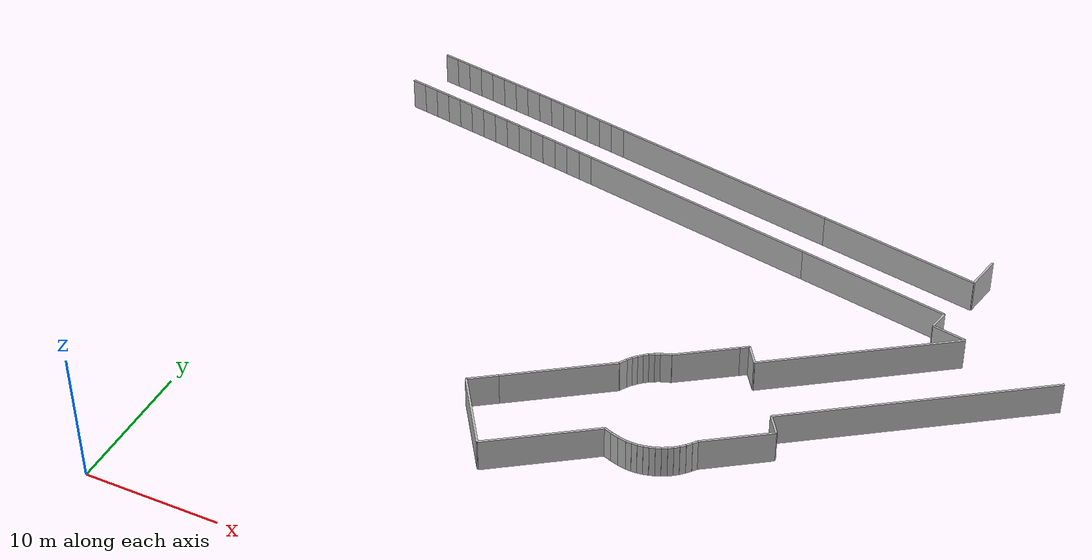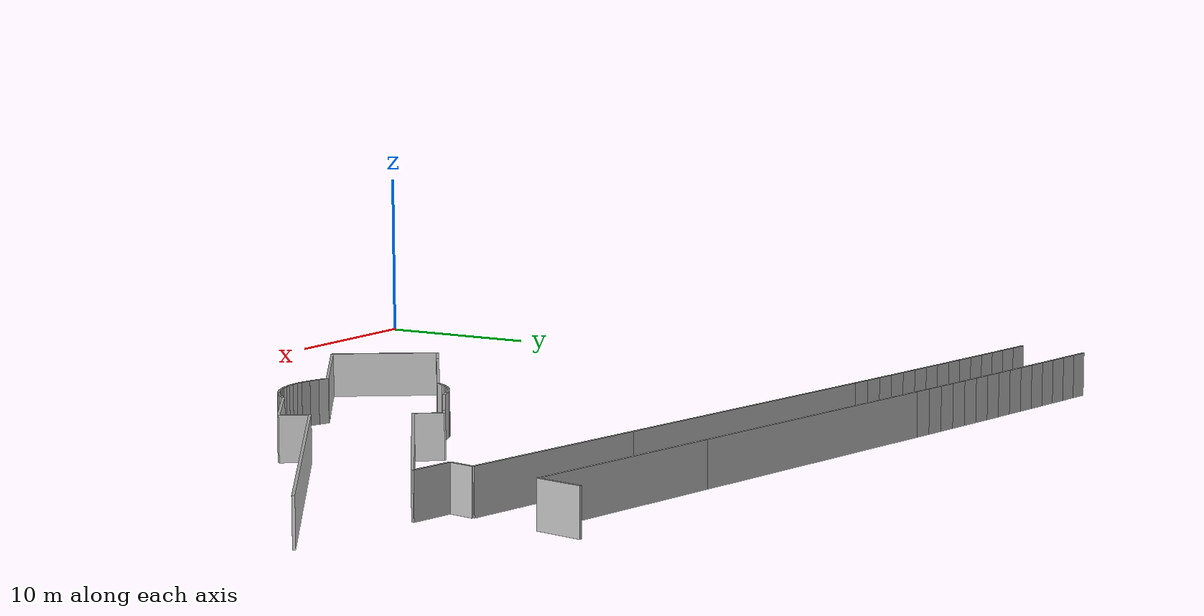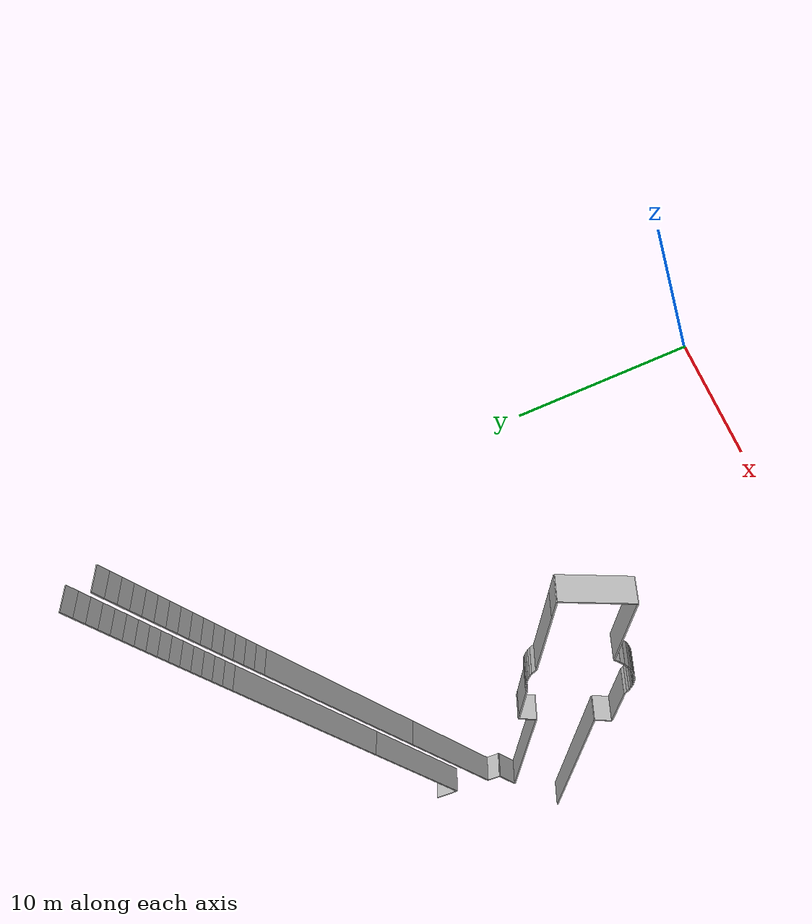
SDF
<?xml version="1.0" ?>
<sdf version="1.6">
  <model name="sps_2746">
    <pose frame="">0 0 0 0 -0 0</pose>
    <static>1</static>
    <self_collide>0</self_collide>
    <allow_auto_disable>0</allow_auto_disable>
    <link name="Wall66">
      <kinematic>0</kinematic>
      <gravity>1</gravity>
      <self_collide>0</self_collide>
      <collision name="collision">
        <geometry>
          <box>
            <size>2.18574 0.15 2.5</size>
          </box>
        </geometry>
        <pose frame="">0 0 0 0 -0 0</pose>
      </collision>
      <visual name="visual">
        <geometry>
          <box>
            <size>2.18574 0.15 2.5</size>
          </box>
        </geometry>
        <pose frame="">0 0 0 0 -0 0</pose>
        <cast_shadows>1</cast_shadows>
        <transparency>0.0</transparency>
      </visual>
      <pose frame="">20.1644 17.2707 1.25 0 -0 0.605917</pose>
    </link>
    <link name="Wall67">
      <kinematic>0</kinematic>
      <gravity>1</gravity>
      <self_collide>0</self_collide>
      <collision name="collision">
        <geometry>
          <box>
            <size>8.16413 0.15 2.5</size>
          </box>
        </geometry>
        <pose frame="">0 0 0 0 -0 0</pose>
      </collision>
      <visual name="visual">
        <geometry>
          <box>
            <size>8.16413 0.15 2.5</size>
          </box>
        </geometry>
        <pose frame="">0 0 0 0 -0 0</pose>
        <cast_shadows>1</cast_shadows>
        <transparency>0.0</transparency>
      </visual>
      <pose frame="">24.4181 20.2179 1.25 0 -0 0.605917</pose>
    </link>
    <link name="Wall68">
      <kinematic>0</kinematic>
      <gravity>1</gravity>
      <self_collide>0</self_collide>
      <collision name="collision">
        <geometry>
          <box>
            <size>2.66015 0.15 2.5</size>
          </box>
        </geometry>
        <pose frame="">0 0 0 0 -0 0</pose>
      </collision>
      <visual name="visual">
        <geometry>
          <box>
            <size>2.66015 0.15 2.5</size>
          </box>
        </geometry>
        <pose frame="">0 0 0 0 -0 0</pose>
        <cast_shadows>1</cast_shadows>
        <transparency>0.0</transparency>
      </visual>
      <pose frame="">46.7183 42.2026 1.25 0 -0 1.39135</pose>
    </link>
    <link name="Wall143">
      <kinematic>0</kinematic>
      <gravity>1</gravity>
      <self_collide>0</self_collide>
      <collision name="collision">
        <geometry>
          <box>
            <size>1.49983 0.15 2.5</size>
          </box>
        </geometry>
        <pose frame="">0 0 0 0 -0 0</pose>
      </collision>
      <visual name="visual">
        <geometry>
          <box>
            <size>1.49983 0.15 2.5</size>
          </box>
        </geometry>
        <pose frame="">0 0 0 0 -0 0</pose>
        <cast_shadows>1</cast_shadows>
        <transparency>0.0</transparency>
      </visual>
      <pose frame="">45.6082 36.0828 1.25 0 -0 1.39168</pose>
    </link>
    <link name="Wall144">
      <kinematic>0</kinematic>
      <gravity>1</gravity>
      <self_collide>0</self_collide>
      <collision name="collision">
        <geometry>
          <box>
            <size>11.4563 0.15 2.5</size>
          </box>
        </geometry>
        <pose frame="">0 0 0 0 -0 0</pose>
      </collision>
      <visual name="visual">
        <geometry>
          <box>
            <size>11.4563 0.15 2.5</size>
          </box>
        </geometry>
        <pose frame="">0 0 0 0 -0 0</pose>
        <cast_shadows>1</cast_shadows>
        <transparency>0.0</transparency>
      </visual>
      <pose frame="">40.1056 37.8428 1.25 0 -0 2.9622</pose>
    </link>
    <link name="Wall145">
      <kinematic>0</kinematic>
      <gravity>1</gravity>
      <self_collide>0</self_collide>
      <collision name="collision">
        <geometry>
          <box>
            <size>18.5098 0.15 2.5</size>
          </box>
        </geometry>
        <pose frame="">0 0 0 0 -0 0</pose>
      </collision>
      <visual name="visual">
        <geometry>
          <box>
            <size>18.5098 0.15 2.5</size>
          </box>
        </geometry>
        <pose frame="">0 0 0 0 -0 0</pose>
        <cast_shadows>1</cast_shadows>
        <transparency>0.0</transparency>
      </visual>
      <pose frame="">25.3631 40.5163 1.25 0 -0 2.9622</pose>
    </link>
    <link name="Wall252">
      <kinematic>0</kinematic>
      <gravity>1</gravity>
      <self_collide>0</self_collide>
      <collision name="collision">
        <geometry>
          <box>
            <size>6.10074 0.15 2.5</size>
          </box>
        </geometry>
        <pose frame="">0 0 0 0 -0 0</pose>
      </collision>
      <visual name="visual">
        <geometry>
          <box>
            <size>6.10074 0.15 2.5</size>
          </box>
        </geometry>
        <pose frame="">0 0 0 0 -0 0</pose>
        <cast_shadows>1</cast_shadows>
        <transparency>0.0</transparency>
      </visual>
      <pose frame="">21.0034 14.141 1.25 0 -0 2.17674</pose>
    </link>
    <link name="Wall253">
      <kinematic>0</kinematic>
      <gravity>1</gravity>
      <self_collide>0</self_collide>
      <collision name="collision">
        <geometry>
          <box>
            <size>14.6083 0.15 2.5</size>
          </box>
        </geometry>
        <pose frame="">0 0 0 0 -0 0</pose>
      </collision>
      <visual name="visual">
        <geometry>
          <box>
            <size>14.6083 0.15 2.5</size>
          </box>
        </geometry>
        <pose frame="">0 0 0 0 -0 0</pose>
        <cast_shadows>1</cast_shadows>
        <transparency>0.0</transparency>
      </visual>
      <pose frame="">41.9368 30.7295 1.25 0 -0 0.607546</pose>
    </link>
    <link name="Wall254">
      <kinematic>0</kinematic>
      <gravity>1</gravity>
      <self_collide>0</self_collide>
      <collision name="collision">
        <geometry>
          <box>
            <size>19.912 0.15 2.5</size>
          </box>
        </geometry>
        <pose frame="">0 0 0 0 -0 0</pose>
      </collision>
      <visual name="visual">
        <geometry>
          <box>
            <size>19.912 0.15 2.5</size>
          </box>
        </geometry>
        <pose frame="">0 0 0 0 -0 0</pose>
        <cast_shadows>1</cast_shadows>
        <transparency>0.0</transparency>
      </visual>
      <pose frame="">47.1357 27.8817 1.25 0 0 -2.53463</pose>
    </link>
    <link name="Wall316">
      <kinematic>0</kinematic>
      <gravity>1</gravity>
      <self_collide>0</self_collide>
      <collision name="collision">
        <geometry>
          <box>
            <size>5.1925 0.15 2.5</size>
          </box>
        </geometry>
        <pose frame="">0 0 0 0 -0 0</pose>
      </collision>
      <visual name="visual">
        <geometry>
          <box>
            <size>5.1925 0.15 2.5</size>
          </box>
        </geometry>
        <pose frame="">0 0 0 0 -0 0</pose>
        <cast_shadows>1</cast_shadows>
        <transparency>0.0</transparency>
      </visual>
      <pose frame="">37.7356 19.4094 1.25 0 0 -2.53563</pose>
    </link>
    <link name="Wall317">
      <kinematic>0</kinematic>
      <gravity>1</gravity>
      <self_collide>0</self_collide>
      <collision name="collision">
        <geometry>
          <box>
            <size>2.4993 0.15 2.5</size>
          </box>
        </geometry>
        <pose frame="">0 0 0 0 -0 0</pose>
      </collision>
      <visual name="visual">
        <geometry>
          <box>
            <size>2.4993 0.15 2.5</size>
          </box>
        </geometry>
        <pose frame="">0 0 0 0 -0 0</pose>
        <cast_shadows>1</cast_shadows>
        <transparency>0.0</transparency>
      </visual>
      <pose frame="">46.7042 35.122 1.25 0 -0 2.96229</pose>
    </link>
    <link name="Wall381">
      <kinematic>0</kinematic>
      <gravity>1</gravity>
      <self_collide>0</self_collide>
      <collision name="collision">
        <geometry>
          <box>
            <size>8.38171 0.15 2.5</size>
          </box>
        </geometry>
        <pose frame="">0 0 0 0 -0 0</pose>
      </collision>
      <visual name="visual">
        <geometry>
          <box>
            <size>8.38171 0.15 2.5</size>
          </box>
        </geometry>
        <pose frame="">0 0 0 0 -0 0</pose>
        <cast_shadows>1</cast_shadows>
        <transparency>0.0</transparency>
      </visual>
      <pose frame="">26.1852 14.0209 1.25 0 0 -2.53555</pose>
    </link>
    <link name="Wall382">
      <kinematic>0</kinematic>
      <gravity>1</gravity>
      <self_collide>0</self_collide>
      <collision name="collision">
        <geometry>
          <box>
            <size>17.7611 0.15 2.5</size>
          </box>
        </geometry>
        <pose frame="">0 0 0 0 -0 0</pose>
      </collision>
      <visual name="visual">
        <geometry>
          <box>
            <size>17.7611 0.15 2.5</size>
          </box>
        </geometry>
        <pose frame="">0 0 0 0 -0 0</pose>
        <cast_shadows>1</cast_shadows>
        <transparency>0.0</transparency>
      </visual>
      <pose frame="">25.7314 44.6568 1.25 0 0 -0.179402</pose>
    </link>
    <link name="Wall383">
      <kinematic>0</kinematic>
      <gravity>1</gravity>
      <self_collide>0</self_collide>
      <collision name="collision">
        <geometry>
          <box>
            <size>12.2073 0.15 2.5</size>
          </box>
        </geometry>
        <pose frame="">0 0 0 0 -0 0</pose>
      </collision>
      <visual name="visual">
        <geometry>
          <box>
            <size>12.2073 0.15 2.5</size>
          </box>
        </geometry>
        <pose frame="">0 0 0 0 -0 0</pose>
        <cast_shadows>1</cast_shadows>
        <transparency>0.0</transparency>
      </visual>
      <pose frame="">40.4752 41.983 1.25 0 0 -0.179402</pose>
    </link>
    <link name="Wall475">
      <kinematic>0</kinematic>
      <gravity>1</gravity>
      <self_collide>0</self_collide>
      <collision name="collision">
        <geometry>
          <box>
            <size>1.6001 0.15 2.5</size>
          </box>
        </geometry>
        <pose frame="">0 0 0 0 -0 0</pose>
      </collision>
      <visual name="visual">
        <geometry>
          <box>
            <size>1.6001 0.15 2.5</size>
          </box>
        </geometry>
        <pose frame="">0 0 0 0 -0 0</pose>
        <cast_shadows>1</cast_shadows>
        <transparency>0.0</transparency>
      </visual>
      <pose frame="">35.484 27.2175 1.25 0 0 -0.964808</pose>
    </link>
    <link name="Wall476">
      <kinematic>0</kinematic>
      <gravity>1</gravity>
      <self_collide>0</self_collide>
      <collision name="collision">
        <geometry>
          <box>
            <size>1.60009 0.15 2.5</size>
          </box>
        </geometry>
        <pose frame="">0 0 0 0 -0 0</pose>
      </collision>
      <visual name="visual">
        <geometry>
          <box>
            <size>1.60009 0.15 2.5</size>
          </box>
        </geometry>
        <pose frame="">0 0 0 0 -0 0</pose>
        <cast_shadows>1</cast_shadows>
        <transparency>0.0</transparency>
      </visual>
      <pose frame="">39.4138 21.5456 1.25 0 0 -0.964617</pose>
    </link>
    <link name="Wall567">
      <kinematic>0</kinematic>
      <gravity>1</gravity>
      <self_collide>0</self_collide>
      <collision name="collision">
        <geometry>
          <box>
            <size>0.610231 0.15 2.5</size>
          </box>
        </geometry>
        <pose frame="">0 0 0 0 -0 0</pose>
      </collision>
      <visual name="visual">
        <geometry>
          <box>
            <size>0.610231 0.15 2.5</size>
          </box>
        </geometry>
        <pose frame="">0 0 0 0 -0 0</pose>
        <cast_shadows>1</cast_shadows>
        <transparency>0.0</transparency>
      </visual>
      <pose frame="">27.9307 22.8042 1.25 0 0 -2.11204</pose>
    </link>
    <link name="Wall568">
      <kinematic>0</kinematic>
      <gravity>1</gravity>
      <self_collide>0</self_collide>
      <collision name="collision">
        <geometry>
          <box>
            <size>0.774105 0.15 2.5</size>
          </box>
        </geometry>
        <pose frame="">0 0 0 0 -0 0</pose>
      </collision>
      <visual name="visual">
        <geometry>
          <box>
            <size>0.774105 0.15 2.5</size>
          </box>
        </geometry>
        <pose frame="">0 0 0 0 -0 0</pose>
        <cast_shadows>1</cast_shadows>
        <transparency>0.0</transparency>
      </visual>
      <pose frame="">30.2564 24.7115 1.25 0 -0 0.349081</pose>
    </link>
    <link name="Wall569">
      <kinematic>0</kinematic>
      <gravity>1</gravity>
      <self_collide>0</self_collide>
      <collision name="collision">
        <geometry>
          <box>
            <size>4.67159 0.15 2.5</size>
          </box>
        </geometry>
        <pose frame="">0 0 0 0 -0 0</pose>
      </collision>
      <visual name="visual">
        <geometry>
          <box>
            <size>4.67159 0.15 2.5</size>
          </box>
        </geometry>
        <pose frame="">0 0 0 0 -0 0</pose>
        <cast_shadows>1</cast_shadows>
        <transparency>0.0</transparency>
      </visual>
      <pose frame="">32.5448 26.1673 1.25 0 -0 0.602372</pose>
    </link>
    <link name="Wall570">
      <kinematic>0</kinematic>
      <gravity>1</gravity>
      <self_collide>0</self_collide>
      <collision name="collision">
        <geometry>
          <box>
            <size>0.678206 0.15 2.5</size>
          </box>
        </geometry>
        <pose frame="">0 0 0 0 -0 0</pose>
      </collision>
      <visual name="visual">
        <geometry>
          <box>
            <size>0.678206 0.15 2.5</size>
          </box>
        </geometry>
        <pose frame="">0 0 0 0 -0 0</pose>
        <cast_shadows>1</cast_shadows>
        <transparency>0.0</transparency>
      </visual>
      <pose frame="">34.7489 27.6829 1.25 0 -0 0.602372</pose>
    </link>
    <link name="Wall3419">
      <kinematic>0</kinematic>
      <gravity>1</gravity>
      <self_collide>0</self_collide>
      <collision name="collision">
        <geometry>
          <box>
            <size>1.12144 0.15 2.5</size>
          </box>
        </geometry>
        <pose frame="">0 0 0 0 -0 0</pose>
      </collision>
      <visual name="visual">
        <geometry>
          <box>
            <size>1.12144 0.15 2.5</size>
          </box>
        </geometry>
        <pose frame="">0 0 0 0 -0 0</pose>
        <cast_shadows>1</cast_shadows>
        <transparency>0.0</transparency>
      </visual>
      <pose frame="">15.7049 42.2672 1.25 0 -0 2.96317</pose>
    </link>
    <link name="Wall3420">
      <kinematic>0</kinematic>
      <gravity>1</gravity>
      <self_collide>0</self_collide>
      <collision name="collision">
        <geometry>
          <box>
            <size>1.12127 0.15 2.5</size>
          </box>
        </geometry>
        <pose frame="">0 0 0 0 -0 0</pose>
      </collision>
      <visual name="visual">
        <geometry>
          <box>
            <size>1.12127 0.15 2.5</size>
          </box>
        </geometry>
        <pose frame="">0 0 0 0 -0 0</pose>
        <cast_shadows>1</cast_shadows>
        <transparency>0.0</transparency>
      </visual>
      <pose frame="">14.6012 42.4654 1.25 0 -0 2.96463</pose>
    </link>
    <link name="Wall3421">
      <kinematic>0</kinematic>
      <gravity>1</gravity>
      <self_collide>0</self_collide>
      <collision name="collision">
        <geometry>
          <box>
            <size>1.1213 0.15 2.5</size>
          </box>
        </geometry>
        <pose frame="">0 0 0 0 -0 0</pose>
      </collision>
      <visual name="visual">
        <geometry>
          <box>
            <size>1.1213 0.15 2.5</size>
          </box>
        </geometry>
        <pose frame="">0 0 0 0 -0 0</pose>
        <cast_shadows>1</cast_shadows>
        <transparency>0.0</transparency>
      </visual>
      <pose frame="">13.4973 42.6622 1.25 0 -0 2.96574</pose>
    </link>
    <link name="Wall3422">
      <kinematic>0</kinematic>
      <gravity>1</gravity>
      <self_collide>0</self_collide>
      <collision name="collision">
        <geometry>
          <box>
            <size>1.12152 0.15 2.5</size>
          </box>
        </geometry>
        <pose frame="">0 0 0 0 -0 0</pose>
      </collision>
      <visual name="visual">
        <geometry>
          <box>
            <size>1.12152 0.15 2.5</size>
          </box>
        </geometry>
        <pose frame="">0 0 0 0 -0 0</pose>
        <cast_shadows>1</cast_shadows>
        <transparency>0.0</transparency>
      </visual>
      <pose frame="">12.3931 42.8578 1.25 0 -0 2.96683</pose>
    </link>
    <link name="Wall3423">
      <kinematic>0</kinematic>
      <gravity>1</gravity>
      <self_collide>0</self_collide>
      <collision name="collision">
        <geometry>
          <box>
            <size>1.12145 0.15 2.5</size>
          </box>
        </geometry>
        <pose frame="">0 0 0 0 -0 0</pose>
      </collision>
      <visual name="visual">
        <geometry>
          <box>
            <size>1.12145 0.15 2.5</size>
          </box>
        </geometry>
        <pose frame="">0 0 0 0 -0 0</pose>
        <cast_shadows>1</cast_shadows>
        <transparency>0.0</transparency>
      </visual>
      <pose frame="">11.2885 43.0521 1.25 0 -0 2.96809</pose>
    </link>
    <link name="Wall3424">
      <kinematic>0</kinematic>
      <gravity>1</gravity>
      <self_collide>0</self_collide>
      <collision name="collision">
        <geometry>
          <box>
            <size>1.12157 0.15 2.5</size>
          </box>
        </geometry>
        <pose frame="">0 0 0 0 -0 0</pose>
      </collision>
      <visual name="visual">
        <geometry>
          <box>
            <size>1.12157 0.15 2.5</size>
          </box>
        </geometry>
        <pose frame="">0 0 0 0 -0 0</pose>
        <cast_shadows>1</cast_shadows>
        <transparency>0.0</transparency>
      </visual>
      <pose frame="">10.1837 43.245 1.25 0 -0 2.96938</pose>
    </link>
    <link name="Wall3425">
      <kinematic>0</kinematic>
      <gravity>1</gravity>
      <self_collide>0</self_collide>
      <collision name="collision">
        <geometry>
          <box>
            <size>1.12133 0.15 2.5</size>
          </box>
        </geometry>
        <pose frame="">0 0 0 0 -0 0</pose>
      </collision>
      <visual name="visual">
        <geometry>
          <box>
            <size>1.12133 0.15 2.5</size>
          </box>
        </geometry>
        <pose frame="">0 0 0 0 -0 0</pose>
        <cast_shadows>1</cast_shadows>
        <transparency>0.0</transparency>
      </visual>
      <pose frame="">9.07876 43.4365 1.25 0 -0 2.97061</pose>
    </link>
    <link name="Wall3426">
      <kinematic>0</kinematic>
      <gravity>1</gravity>
      <self_collide>0</self_collide>
      <collision name="collision">
        <geometry>
          <box>
            <size>1.12141 0.15 2.5</size>
          </box>
        </geometry>
        <pose frame="">0 0 0 0 -0 0</pose>
      </collision>
      <visual name="visual">
        <geometry>
          <box>
            <size>1.12141 0.15 2.5</size>
          </box>
        </geometry>
        <pose frame="">0 0 0 0 -0 0</pose>
        <cast_shadows>1</cast_shadows>
        <transparency>0.0</transparency>
      </visual>
      <pose frame="">7.97366 43.6268 1.25 0 -0 2.9715</pose>
    </link>
    <link name="Wall3427">
      <kinematic>0</kinematic>
      <gravity>1</gravity>
      <self_collide>0</self_collide>
      <collision name="collision">
        <geometry>
          <box>
            <size>1.12131 0.15 2.5</size>
          </box>
        </geometry>
        <pose frame="">0 0 0 0 -0 0</pose>
      </collision>
      <visual name="visual">
        <geometry>
          <box>
            <size>1.12131 0.15 2.5</size>
          </box>
        </geometry>
        <pose frame="">0 0 0 0 -0 0</pose>
        <cast_shadows>1</cast_shadows>
        <transparency>0.0</transparency>
      </visual>
      <pose frame="">6.86834 43.8158 1.25 0 -0 2.97298</pose>
    </link>
    <link name="Wall3428">
      <kinematic>0</kinematic>
      <gravity>1</gravity>
      <self_collide>0</self_collide>
      <collision name="collision">
        <geometry>
          <box>
            <size>1.1213 0.15 2.5</size>
          </box>
        </geometry>
        <pose frame="">0 0 0 0 -0 0</pose>
      </collision>
      <visual name="visual">
        <geometry>
          <box>
            <size>1.1213 0.15 2.5</size>
          </box>
        </geometry>
        <pose frame="">0 0 0 0 -0 0</pose>
        <cast_shadows>1</cast_shadows>
        <transparency>0.0</transparency>
      </visual>
      <pose frame="">5.76284 44.0034 1.25 0 -0 2.97403</pose>
    </link>
    <link name="Wall3429">
      <kinematic>0</kinematic>
      <gravity>1</gravity>
      <self_collide>0</self_collide>
      <collision name="collision">
        <geometry>
          <box>
            <size>1.12124 0.15 2.5</size>
          </box>
        </geometry>
        <pose frame="">0 0 0 0 -0 0</pose>
      </collision>
      <visual name="visual">
        <geometry>
          <box>
            <size>1.12124 0.15 2.5</size>
          </box>
        </geometry>
        <pose frame="">0 0 0 0 -0 0</pose>
        <cast_shadows>1</cast_shadows>
        <transparency>0.0</transparency>
      </visual>
      <pose frame="">4.65716 44.1897 1.25 0 -0 2.97529</pose>
    </link>
    <link name="Wall3430">
      <kinematic>0</kinematic>
      <gravity>1</gravity>
      <self_collide>0</self_collide>
      <collision name="collision">
        <geometry>
          <box>
            <size>1.12146 0.15 2.5</size>
          </box>
        </geometry>
        <pose frame="">0 0 0 0 -0 0</pose>
      </collision>
      <visual name="visual">
        <geometry>
          <box>
            <size>1.12146 0.15 2.5</size>
          </box>
        </geometry>
        <pose frame="">0 0 0 0 -0 0</pose>
        <cast_shadows>1</cast_shadows>
        <transparency>0.0</transparency>
      </visual>
      <pose frame="">3.55117 44.3747 1.25 0 -0 2.97643</pose>
    </link>
    <link name="Wall3431">
      <kinematic>0</kinematic>
      <gravity>1</gravity>
      <self_collide>0</self_collide>
      <collision name="collision">
        <geometry>
          <box>
            <size>1.12142 0.15 2.5</size>
          </box>
        </geometry>
        <pose frame="">0 0 0 0 -0 0</pose>
      </collision>
      <visual name="visual">
        <geometry>
          <box>
            <size>1.12142 0.15 2.5</size>
          </box>
        </geometry>
        <pose frame="">0 0 0 0 -0 0</pose>
        <cast_shadows>1</cast_shadows>
        <transparency>0.0</transparency>
      </visual>
      <pose frame="">2.44488 44.5584 1.25 0 -0 2.97763</pose>
    </link>
    <link name="Wall3432">
      <kinematic>0</kinematic>
      <gravity>1</gravity>
      <self_collide>0</self_collide>
      <collision name="collision">
        <geometry>
          <box>
            <size>1.12128 0.15 2.5</size>
          </box>
        </geometry>
        <pose frame="">0 0 0 0 -0 0</pose>
      </collision>
      <visual name="visual">
        <geometry>
          <box>
            <size>1.12128 0.15 2.5</size>
          </box>
        </geometry>
        <pose frame="">0 0 0 0 -0 0</pose>
        <cast_shadows>1</cast_shadows>
        <transparency>0.0</transparency>
      </visual>
      <pose frame="">1.33846 44.7408 1.25 0 -0 2.97877</pose>
    </link>
    <link name="Wall3433">
      <kinematic>0</kinematic>
      <gravity>1</gravity>
      <self_collide>0</self_collide>
      <collision name="collision">
        <geometry>
          <box>
            <size>1.12142 0.15 2.5</size>
          </box>
        </geometry>
        <pose frame="">0 0 0 0 -0 0</pose>
      </collision>
      <visual name="visual">
        <geometry>
          <box>
            <size>1.12142 0.15 2.5</size>
          </box>
        </geometry>
        <pose frame="">0 0 0 0 -0 0</pose>
        <cast_shadows>1</cast_shadows>
        <transparency>0.0</transparency>
      </visual>
      <pose frame="">0.231834 44.9219 1.25 0 -0 2.98001</pose>
    </link>
    <link name="Wall7269">
      <kinematic>0</kinematic>
      <gravity>1</gravity>
      <self_collide>0</self_collide>
      <collision name="collision">
        <geometry>
          <box>
            <size>1.12627 0.15 2.5</size>
          </box>
        </geometry>
        <pose frame="">0 0 0 0 -0 0</pose>
      </collision>
      <visual name="visual">
        <geometry>
          <box>
            <size>1.12627 0.15 2.5</size>
          </box>
        </geometry>
        <pose frame="">0 0 0 0 -0 0</pose>
        <cast_shadows>1</cast_shadows>
        <transparency>0.0</transparency>
      </visual>
      <pose frame="">16.4392 46.3414 1.25 0 -0 2.96322</pose>
    </link>
    <link name="Wall7270">
      <kinematic>0</kinematic>
      <gravity>1</gravity>
      <self_collide>0</self_collide>
      <collision name="collision">
        <geometry>
          <box>
            <size>1.12619 0.15 2.5</size>
          </box>
        </geometry>
        <pose frame="">0 0 0 0 -0 0</pose>
      </collision>
      <visual name="visual">
        <geometry>
          <box>
            <size>1.12619 0.15 2.5</size>
          </box>
        </geometry>
        <pose frame="">0 0 0 0 -0 0</pose>
        <cast_shadows>1</cast_shadows>
        <transparency>0.0</transparency>
      </visual>
      <pose frame="">15.3307 46.5405 1.25 0 -0 2.96453</pose>
    </link>
    <link name="Wall7271">
      <kinematic>0</kinematic>
      <gravity>1</gravity>
      <self_collide>0</self_collide>
      <collision name="collision">
        <geometry>
          <box>
            <size>1.12641 0.15 2.5</size>
          </box>
        </geometry>
        <pose frame="">0 0 0 0 -0 0</pose>
      </collision>
      <visual name="visual">
        <geometry>
          <box>
            <size>1.12641 0.15 2.5</size>
          </box>
        </geometry>
        <pose frame="">0 0 0 0 -0 0</pose>
        <cast_shadows>1</cast_shadows>
        <transparency>0.0</transparency>
      </visual>
      <pose frame="">14.2219 46.7383 1.25 0 -0 2.96561</pose>
    </link>
    <link name="Wall7272">
      <kinematic>0</kinematic>
      <gravity>1</gravity>
      <self_collide>0</self_collide>
      <collision name="collision">
        <geometry>
          <box>
            <size>1.12634 0.15 2.5</size>
          </box>
        </geometry>
        <pose frame="">0 0 0 0 -0 0</pose>
      </collision>
      <visual name="visual">
        <geometry>
          <box>
            <size>1.12634 0.15 2.5</size>
          </box>
        </geometry>
        <pose frame="">0 0 0 0 -0 0</pose>
        <cast_shadows>1</cast_shadows>
        <transparency>0.0</transparency>
      </visual>
      <pose frame="">13.1128 46.9348 1.25 0 -0 2.96687</pose>
    </link>
    <link name="Wall7273">
      <kinematic>0</kinematic>
      <gravity>1</gravity>
      <self_collide>0</self_collide>
      <collision name="collision">
        <geometry>
          <box>
            <size>1.12628 0.15 2.5</size>
          </box>
        </geometry>
        <pose frame="">0 0 0 0 -0 0</pose>
      </collision>
      <visual name="visual">
        <geometry>
          <box>
            <size>1.12628 0.15 2.5</size>
          </box>
        </geometry>
        <pose frame="">0 0 0 0 -0 0</pose>
        <cast_shadows>1</cast_shadows>
        <transparency>0.0</transparency>
      </visual>
      <pose frame="">12.0036 47.1299 1.25 0 -0 2.96812</pose>
    </link>
    <link name="Wall7274">
      <kinematic>0</kinematic>
      <gravity>1</gravity>
      <self_collide>0</self_collide>
      <collision name="collision">
        <geometry>
          <box>
            <size>1.1265 0.15 2.5</size>
          </box>
        </geometry>
        <pose frame="">0 0 0 0 -0 0</pose>
      </collision>
      <visual name="visual">
        <geometry>
          <box>
            <size>1.1265 0.15 2.5</size>
          </box>
        </geometry>
        <pose frame="">0 0 0 0 -0 0</pose>
        <cast_shadows>1</cast_shadows>
        <transparency>0.0</transparency>
      </visual>
      <pose frame="">10.894 47.3237 1.25 0 -0 2.9692</pose>
    </link>
    <link name="Wall7275">
      <kinematic>0</kinematic>
      <gravity>1</gravity>
      <self_collide>0</self_collide>
      <collision name="collision">
        <geometry>
          <box>
            <size>1.12625 0.15 2.5</size>
          </box>
        </geometry>
        <pose frame="">0 0 0 0 -0 0</pose>
      </collision>
      <visual name="visual">
        <geometry>
          <box>
            <size>1.12625 0.15 2.5</size>
          </box>
        </geometry>
        <pose frame="">0 0 0 0 -0 0</pose>
        <cast_shadows>1</cast_shadows>
        <transparency>0.0</transparency>
      </visual>
      <pose frame="">9.78417 47.5162 1.25 0 -0 2.97048</pose>
    </link>
    <link name="Wall7276">
      <kinematic>0</kinematic>
      <gravity>1</gravity>
      <self_collide>0</self_collide>
      <collision name="collision">
        <geometry>
          <box>
            <size>1.1262 0.15 2.5</size>
          </box>
        </geometry>
        <pose frame="">0 0 0 0 -0 0</pose>
      </collision>
      <visual name="visual">
        <geometry>
          <box>
            <size>1.1262 0.15 2.5</size>
          </box>
        </geometry>
        <pose frame="">0 0 0 0 -0 0</pose>
        <cast_shadows>1</cast_shadows>
        <transparency>0.0</transparency>
      </visual>
      <pose frame="">8.67428 47.7073 1.25 0 -0 2.97169</pose>
    </link>
    <link name="Wall7277">
      <kinematic>0</kinematic>
      <gravity>1</gravity>
      <self_collide>0</self_collide>
      <collision name="collision">
        <geometry>
          <box>
            <size>1.1262 0.15 2.5</size>
          </box>
        </geometry>
        <pose frame="">0 0 0 0 -0 0</pose>
      </collision>
      <visual name="visual">
        <geometry>
          <box>
            <size>1.1262 0.15 2.5</size>
          </box>
        </geometry>
        <pose frame="">0 0 0 0 -0 0</pose>
        <cast_shadows>1</cast_shadows>
        <transparency>0.0</transparency>
      </visual>
      <pose frame="">7.56417 47.897 1.25 0 -0 2.973</pose>
    </link>
    <link name="Wall7278">
      <kinematic>0</kinematic>
      <gravity>1</gravity>
      <self_collide>0</self_collide>
      <collision name="collision">
        <geometry>
          <box>
            <size>1.12636 0.15 2.5</size>
          </box>
        </geometry>
        <pose frame="">0 0 0 0 -0 0</pose>
      </collision>
      <visual name="visual">
        <geometry>
          <box>
            <size>1.12636 0.15 2.5</size>
          </box>
        </geometry>
        <pose frame="">0 0 0 0 -0 0</pose>
        <cast_shadows>1</cast_shadows>
        <transparency>0.0</transparency>
      </visual>
      <pose frame="">6.45376 48.0854 1.25 0 -0 2.97407</pose>
    </link>
    <link name="Wall7279">
      <kinematic>0</kinematic>
      <gravity>1</gravity>
      <self_collide>0</self_collide>
      <collision name="collision">
        <geometry>
          <box>
            <size>1.12635 0.15 2.5</size>
          </box>
        </geometry>
        <pose frame="">0 0 0 0 -0 0</pose>
      </collision>
      <visual name="visual">
        <geometry>
          <box>
            <size>1.12635 0.15 2.5</size>
          </box>
        </geometry>
        <pose frame="">0 0 0 0 -0 0</pose>
        <cast_shadows>1</cast_shadows>
        <transparency>0.0</transparency>
      </visual>
      <pose frame="">5.34307 48.2726 1.25 0 -0 2.97512</pose>
    </link>
    <link name="Wall7280">
      <kinematic>0</kinematic>
      <gravity>1</gravity>
      <self_collide>0</self_collide>
      <collision name="collision">
        <geometry>
          <box>
            <size>1.12635 0.15 2.5</size>
          </box>
        </geometry>
        <pose frame="">0 0 0 0 -0 0</pose>
      </collision>
      <visual name="visual">
        <geometry>
          <box>
            <size>1.12635 0.15 2.5</size>
          </box>
        </geometry>
        <pose frame="">0 0 0 0 -0 0</pose>
        <cast_shadows>1</cast_shadows>
        <transparency>0.0</transparency>
      </visual>
      <pose frame="">4.23217 48.4585 1.25 0 -0 2.97644</pose>
    </link>
    <link name="Wall7281">
      <kinematic>0</kinematic>
      <gravity>1</gravity>
      <self_collide>0</self_collide>
      <collision name="collision">
        <geometry>
          <box>
            <size>1.12634 0.15 2.5</size>
          </box>
        </geometry>
        <pose frame="">0 0 0 0 -0 0</pose>
      </collision>
      <visual name="visual">
        <geometry>
          <box>
            <size>1.12634 0.15 2.5</size>
          </box>
        </geometry>
        <pose frame="">0 0 0 0 -0 0</pose>
        <cast_shadows>1</cast_shadows>
        <transparency>0.0</transparency>
      </visual>
      <pose frame="">3.12105 48.6431 1.25 0 -0 2.97748</pose>
    </link>
    <link name="Wall7282">
      <kinematic>0</kinematic>
      <gravity>1</gravity>
      <self_collide>0</self_collide>
      <collision name="collision">
        <geometry>
          <box>
            <size>1.12625 0.15 2.5</size>
          </box>
        </geometry>
        <pose frame="">0 0 0 0 -0 0</pose>
      </collision>
      <visual name="visual">
        <geometry>
          <box>
            <size>1.12625 0.15 2.5</size>
          </box>
        </geometry>
        <pose frame="">0 0 0 0 -0 0</pose>
        <cast_shadows>1</cast_shadows>
        <transparency>0.0</transparency>
      </visual>
      <pose frame="">2.00976 48.8263 1.25 0 -0 2.97895</pose>
    </link>
    <link name="Wall7283">
      <kinematic>0</kinematic>
      <gravity>1</gravity>
      <self_collide>0</self_collide>
      <collision name="collision">
        <geometry>
          <box>
            <size>1.12631 0.15 2.5</size>
          </box>
        </geometry>
        <pose frame="">0 0 0 0 -0 0</pose>
      </collision>
      <visual name="visual">
        <geometry>
          <box>
            <size>1.12631 0.15 2.5</size>
          </box>
        </geometry>
        <pose frame="">0 0 0 0 -0 0</pose>
        <cast_shadows>1</cast_shadows>
        <transparency>0.0</transparency>
      </visual>
      <pose frame="">0.898246 49.0081 1.25 0 -0 2.98</pose>
    </link>
    <link name="Wall8194">
      <kinematic>0</kinematic>
      <gravity>1</gravity>
      <self_collide>0</self_collide>
      <collision name="collision">
        <geometry>
          <box>
            <size>0.39704 0.15 2.5</size>
          </box>
        </geometry>
        <pose frame="">0 0 0 0 -0 0</pose>
      </collision>
      <visual name="visual">
        <geometry>
          <box>
            <size>0.39704 0.15 2.5</size>
          </box>
        </geometry>
        <pose frame="">0 0 0 0 -0 0</pose>
        <cast_shadows>1</cast_shadows>
        <transparency>0.0</transparency>
      </visual>
      <pose frame="">29.7165 24.4875 1.25 0 0 -2.66193</pose>
    </link>
    <link name="Wall8195">
      <kinematic>0</kinematic>
      <gravity>1</gravity>
      <self_collide>0</self_collide>
      <collision name="collision">
        <geometry>
          <box>
            <size>0.396899 0.15 2.5</size>
          </box>
        </geometry>
        <pose frame="">0 0 0 0 -0 0</pose>
      </collision>
      <visual name="visual">
        <geometry>
          <box>
            <size>0.396899 0.15 2.5</size>
          </box>
        </geometry>
        <pose frame="">0 0 0 0 -0 0</pose>
        <cast_shadows>1</cast_shadows>
        <transparency>0.0</transparency>
      </visual>
      <pose frame="">29.373 24.2893 1.25 0 0 -2.57453</pose>
    </link>
    <link name="Wall8196">
      <kinematic>0</kinematic>
      <gravity>1</gravity>
      <self_collide>0</self_collide>
      <collision name="collision">
        <geometry>
          <box>
            <size>0.396971 0.15 2.5</size>
          </box>
        </geometry>
        <pose frame="">0 0 0 0 -0 0</pose>
      </collision>
      <visual name="visual">
        <geometry>
          <box>
            <size>0.396971 0.15 2.5</size>
          </box>
        </geometry>
        <pose frame="">0 0 0 0 -0 0</pose>
        <cast_shadows>1</cast_shadows>
        <transparency>0.0</transparency>
      </visual>
      <pose frame="">29.0481 24.0619 1.25 0 0 -2.48736</pose>
    </link>
    <link name="Wall8197">
      <kinematic>0</kinematic>
      <gravity>1</gravity>
      <self_collide>0</self_collide>
      <collision name="collision">
        <geometry>
          <box>
            <size>0.396926 0.15 2.5</size>
          </box>
        </geometry>
        <pose frame="">0 0 0 0 -0 0</pose>
      </collision>
      <visual name="visual">
        <geometry>
          <box>
            <size>0.396926 0.15 2.5</size>
          </box>
        </geometry>
        <pose frame="">0 0 0 0 -0 0</pose>
        <cast_shadows>1</cast_shadows>
        <transparency>0.0</transparency>
      </visual>
      <pose frame="">28.7443 23.8071 1.25 0 0 -2.40035</pose>
    </link>
    <link name="Wall8198">
      <kinematic>0</kinematic>
      <gravity>1</gravity>
      <self_collide>0</self_collide>
      <collision name="collision">
        <geometry>
          <box>
            <size>0.39708 0.15 2.5</size>
          </box>
        </geometry>
        <pose frame="">0 0 0 0 -0 0</pose>
      </collision>
      <visual name="visual">
        <geometry>
          <box>
            <size>0.39708 0.15 2.5</size>
          </box>
        </geometry>
        <pose frame="">0 0 0 0 -0 0</pose>
        <cast_shadows>1</cast_shadows>
        <transparency>0.0</transparency>
      </visual>
      <pose frame="">28.4636 23.5268 1.25 0 0 -2.31314</pose>
    </link>
    <link name="Wall8199">
      <kinematic>0</kinematic>
      <gravity>1</gravity>
      <self_collide>0</self_collide>
      <collision name="collision">
        <geometry>
          <box>
            <size>0.396826 0.15 2.5</size>
          </box>
        </geometry>
        <pose frame="">0 0 0 0 -0 0</pose>
      </collision>
      <visual name="visual">
        <geometry>
          <box>
            <size>0.396826 0.15 2.5</size>
          </box>
        </geometry>
        <pose frame="">0 0 0 0 -0 0</pose>
        <cast_shadows>1</cast_shadows>
        <transparency>0.0</transparency>
      </visual>
      <pose frame="">28.2086 23.2231 1.25 0 0 -2.22531</pose>
    </link>
    <link name="Wall9054">
      <kinematic>0</kinematic>
      <gravity>1</gravity>
      <self_collide>0</self_collide>
      <collision name="collision">
        <geometry>
          <box>
            <size>0.618748 0.15 2.5</size>
          </box>
        </geometry>
        <pose frame="">0 0 0 0 -0 0</pose>
      </collision>
      <visual name="visual">
        <geometry>
          <box>
            <size>0.618748 0.15 2.5</size>
          </box>
        </geometry>
        <pose frame="">0 0 0 0 -0 0</pose>
        <cast_shadows>1</cast_shadows>
        <transparency>0.0</transparency>
      </visual>
      <pose frame="">29.9199 16.3011 1.25 0 0 -0.353137</pose>
    </link>
    <link name="Wall9055">
      <kinematic>0</kinematic>
      <gravity>1</gravity>
      <self_collide>0</self_collide>
      <collision name="collision">
        <geometry>
          <box>
            <size>0.618919 0.15 2.5</size>
          </box>
        </geometry>
        <pose frame="">0 0 0 0 -0 0</pose>
      </collision>
      <visual name="visual">
        <geometry>
          <box>
            <size>0.618919 0.15 2.5</size>
          </box>
        </geometry>
        <pose frame="">0 0 0 0 -0 0</pose>
        <cast_shadows>1</cast_shadows>
        <transparency>0.0</transparency>
      </visual>
      <pose frame="">30.5088 16.1129 1.25 0 0 -0.265526</pose>
    </link>
    <link name="Wall9056">
      <kinematic>0</kinematic>
      <gravity>1</gravity>
      <self_collide>0</self_collide>
      <collision name="collision">
        <geometry>
          <box>
            <size>0.618796 0.15 2.5</size>
          </box>
        </geometry>
        <pose frame="">0 0 0 0 -0 0</pose>
      </collision>
      <visual name="visual">
        <geometry>
          <box>
            <size>0.618796 0.15 2.5</size>
          </box>
        </geometry>
        <pose frame="">0 0 0 0 -0 0</pose>
        <cast_shadows>1</cast_shadows>
        <transparency>0.0</transparency>
      </visual>
      <pose frame="">31.112 15.9769 1.25 0 0 -0.178089</pose>
    </link>
    <link name="Wall9057">
      <kinematic>0</kinematic>
      <gravity>1</gravity>
      <self_collide>0</self_collide>
      <collision name="collision">
        <geometry>
          <box>
            <size>0.396988 0.15 2.5</size>
          </box>
        </geometry>
        <pose frame="">0 0 0 0 -0 0</pose>
      </collision>
      <visual name="visual">
        <geometry>
          <box>
            <size>0.396988 0.15 2.5</size>
          </box>
        </geometry>
        <pose frame="">0 0 0 0 -0 0</pose>
        <cast_shadows>1</cast_shadows>
        <transparency>0.0</transparency>
      </visual>
      <pose frame="">31.6148 15.9134 1.25 0 0 -0.0438316</pose>
    </link>
    <link name="Wall9058">
      <kinematic>0</kinematic>
      <gravity>1</gravity>
      <self_collide>0</self_collide>
      <collision name="collision">
        <geometry>
          <box>
            <size>0.396736 0.15 2.5</size>
          </box>
        </geometry>
        <pose frame="">0 0 0 0 -0 0</pose>
      </collision>
      <visual name="visual">
        <geometry>
          <box>
            <size>0.396736 0.15 2.5</size>
          </box>
        </geometry>
        <pose frame="">0 0 0 0 -0 0</pose>
        <cast_shadows>1</cast_shadows>
        <transparency>0.0</transparency>
      </visual>
      <pose frame="">32.0113 15.9133 1.25 0 -0 0.0433974</pose>
    </link>
    <link name="Wall9059">
      <kinematic>0</kinematic>
      <gravity>1</gravity>
      <self_collide>0</self_collide>
      <collision name="collision">
        <geometry>
          <box>
            <size>0.397012 0.15 2.5</size>
          </box>
        </geometry>
        <pose frame="">0 0 0 0 -0 0</pose>
      </collision>
      <visual name="visual">
        <geometry>
          <box>
            <size>0.397012 0.15 2.5</size>
          </box>
        </geometry>
        <pose frame="">0 0 0 0 -0 0</pose>
        <cast_shadows>1</cast_shadows>
        <transparency>0.0</transparency>
      </visual>
      <pose frame="">32.4062 15.9478 1.25 0 -0 0.130896</pose>
    </link>
    <link name="Wall9060">
      <kinematic>0</kinematic>
      <gravity>1</gravity>
      <self_collide>0</self_collide>
      <collision name="collision">
        <geometry>
          <box>
            <size>0.397006 0.15 2.5</size>
          </box>
        </geometry>
        <pose frame="">0 0 0 0 -0 0</pose>
      </collision>
      <visual name="visual">
        <geometry>
          <box>
            <size>0.397006 0.15 2.5</size>
          </box>
        </geometry>
        <pose frame="">0 0 0 0 -0 0</pose>
        <cast_shadows>1</cast_shadows>
        <transparency>0.0</transparency>
      </visual>
      <pose frame="">32.7969 16.0166 1.25 0 -0 0.217718</pose>
    </link>
    <link name="Wall9061">
      <kinematic>0</kinematic>
      <gravity>1</gravity>
      <self_collide>0</self_collide>
      <collision name="collision">
        <geometry>
          <box>
            <size>0.396923 0.15 2.5</size>
          </box>
        </geometry>
        <pose frame="">0 0 0 0 -0 0</pose>
      </collision>
      <visual name="visual">
        <geometry>
          <box>
            <size>0.396923 0.15 2.5</size>
          </box>
        </geometry>
        <pose frame="">0 0 0 0 -0 0</pose>
        <cast_shadows>1</cast_shadows>
        <transparency>0.0</transparency>
      </visual>
      <pose frame="">33.18 16.1191 1.25 0 -0 0.305022</pose>
    </link>
    <link name="Wall9062">
      <kinematic>0</kinematic>
      <gravity>1</gravity>
      <self_collide>0</self_collide>
      <collision name="collision">
        <geometry>
          <box>
            <size>0.396955 0.15 2.5</size>
          </box>
        </geometry>
        <pose frame="">0 0 0 0 -0 0</pose>
      </collision>
      <visual name="visual">
        <geometry>
          <box>
            <size>0.396955 0.15 2.5</size>
          </box>
        </geometry>
        <pose frame="">0 0 0 0 -0 0</pose>
        <cast_shadows>1</cast_shadows>
        <transparency>0.0</transparency>
      </visual>
      <pose frame="">33.5527 16.2546 1.25 0 -0 0.392556</pose>
    </link>
    <link name="Wall9063">
      <kinematic>0</kinematic>
      <gravity>1</gravity>
      <self_collide>0</self_collide>
      <collision name="collision">
        <geometry>
          <box>
            <size>0.397012 0.15 2.5</size>
          </box>
        </geometry>
        <pose frame="">0 0 0 0 -0 0</pose>
      </collision>
      <visual name="visual">
        <geometry>
          <box>
            <size>0.397012 0.15 2.5</size>
          </box>
        </geometry>
        <pose frame="">0 0 0 0 -0 0</pose>
        <cast_shadows>1</cast_shadows>
        <transparency>0.0</transparency>
      </visual>
      <pose frame="">33.9122 16.4221 1.25 0 -0 0.47953</pose>
    </link>
    <link name="Wall9064">
      <kinematic>0</kinematic>
      <gravity>1</gravity>
      <self_collide>0</self_collide>
      <collision name="collision">
        <geometry>
          <box>
            <size>0.396899 0.15 2.5</size>
          </box>
        </geometry>
        <pose frame="">0 0 0 0 -0 0</pose>
      </collision>
      <visual name="visual">
        <geometry>
          <box>
            <size>0.396899 0.15 2.5</size>
          </box>
        </geometry>
        <pose frame="">0 0 0 0 -0 0</pose>
        <cast_shadows>1</cast_shadows>
        <transparency>0.0</transparency>
      </visual>
      <pose frame="">34.2557 16.6203 1.25 0 -0 0.567059</pose>
    </link>
    <link name="Wall9065">
      <kinematic>0</kinematic>
      <gravity>1</gravity>
      <self_collide>0</self_collide>
      <collision name="collision">
        <geometry>
          <box>
            <size>0.39686 0.15 2.5</size>
          </box>
        </geometry>
        <pose frame="">0 0 0 0 -0 0</pose>
      </collision>
      <visual name="visual">
        <geometry>
          <box>
            <size>0.39686 0.15 2.5</size>
          </box>
        </geometry>
        <pose frame="">0 0 0 0 -0 0</pose>
        <cast_shadows>1</cast_shadows>
        <transparency>0.0</transparency>
      </visual>
      <pose frame="">34.5806 16.8476 1.25 0 -0 0.653867</pose>
    </link>
    <link name="Wall9066">
      <kinematic>0</kinematic>
      <gravity>1</gravity>
      <self_collide>0</self_collide>
      <collision name="collision">
        <geometry>
          <box>
            <size>0.432295 0.15 2.5</size>
          </box>
        </geometry>
        <pose frame="">0 0 0 0 -0 0</pose>
      </collision>
      <visual name="visual">
        <geometry>
          <box>
            <size>0.432295 0.15 2.5</size>
          </box>
        </geometry>
        <pose frame="">0 0 0 0 -0 0</pose>
        <cast_shadows>1</cast_shadows>
        <transparency>0.0</transparency>
      </visual>
      <pose frame="">34.8959 17.116 1.25 0 -0 0.752347</pose>
    </link>
    <link name="Wall9067">
      <kinematic>0</kinematic>
      <gravity>1</gravity>
      <self_collide>0</self_collide>
      <collision name="collision">
        <geometry>
          <box>
            <size>0.432086 0.15 2.5</size>
          </box>
        </geometry>
        <pose frame="">0 0 0 0 -0 0</pose>
      </collision>
      <visual name="visual">
        <geometry>
          <box>
            <size>0.432086 0.15 2.5</size>
          </box>
        </geometry>
        <pose frame="">0 0 0 0 -0 0</pose>
        <cast_shadows>1</cast_shadows>
        <transparency>0.0</transparency>
      </visual>
      <pose frame="">35.198 17.4245 1.25 0 -0 0.839462</pose>
    </link>
    <link name="Wall9068">
      <kinematic>0</kinematic>
      <gravity>1</gravity>
      <self_collide>0</self_collide>
      <collision name="collision">
        <geometry>
          <box>
            <size>0.431958 0.15 2.5</size>
          </box>
        </geometry>
        <pose frame="">0 0 0 0 -0 0</pose>
      </collision>
      <visual name="visual">
        <geometry>
          <box>
            <size>0.431958 0.15 2.5</size>
          </box>
        </geometry>
        <pose frame="">0 0 0 0 -0 0</pose>
        <cast_shadows>1</cast_shadows>
        <transparency>0.0</transparency>
      </visual>
      <pose frame="">35.4719 17.758 1.25 0 -0 0.926645</pose>
    </link>
  </model>
</sdf>
